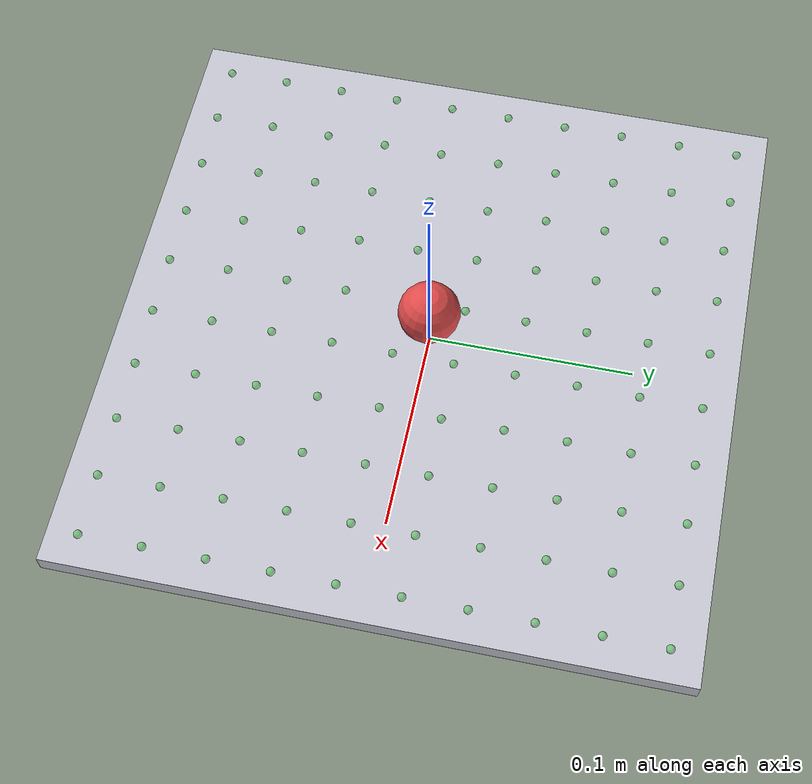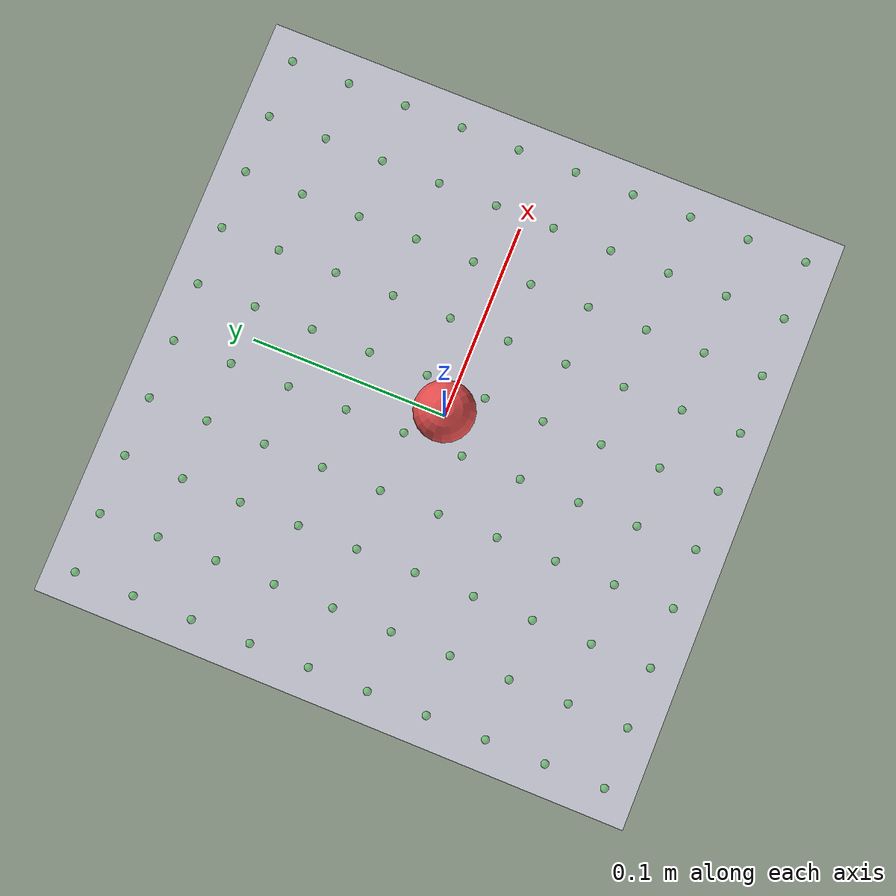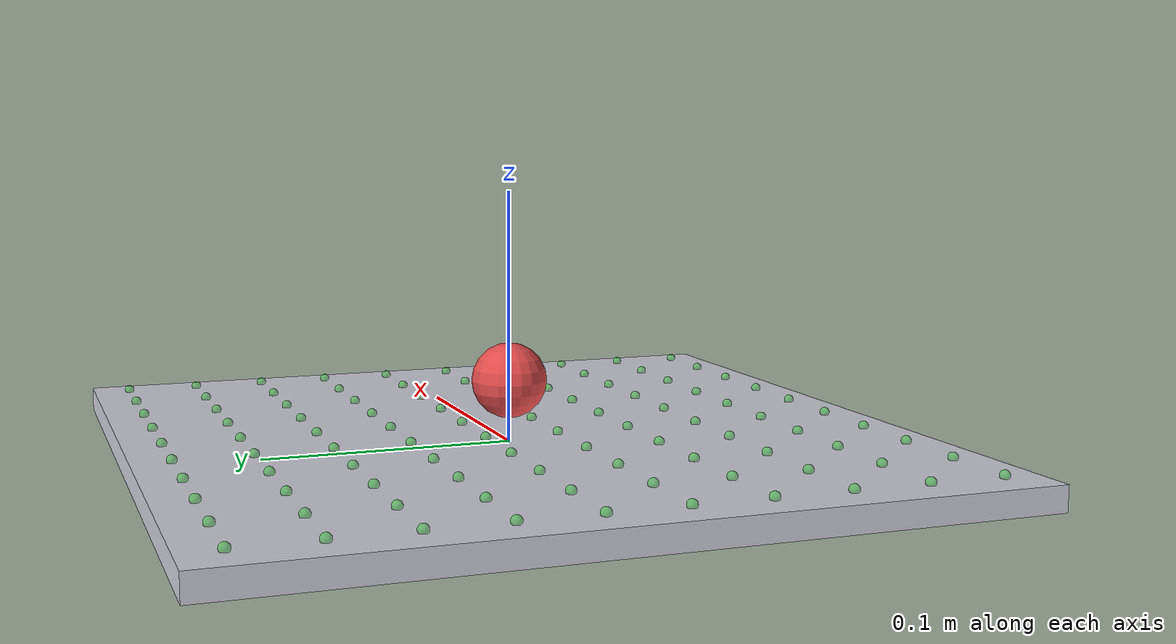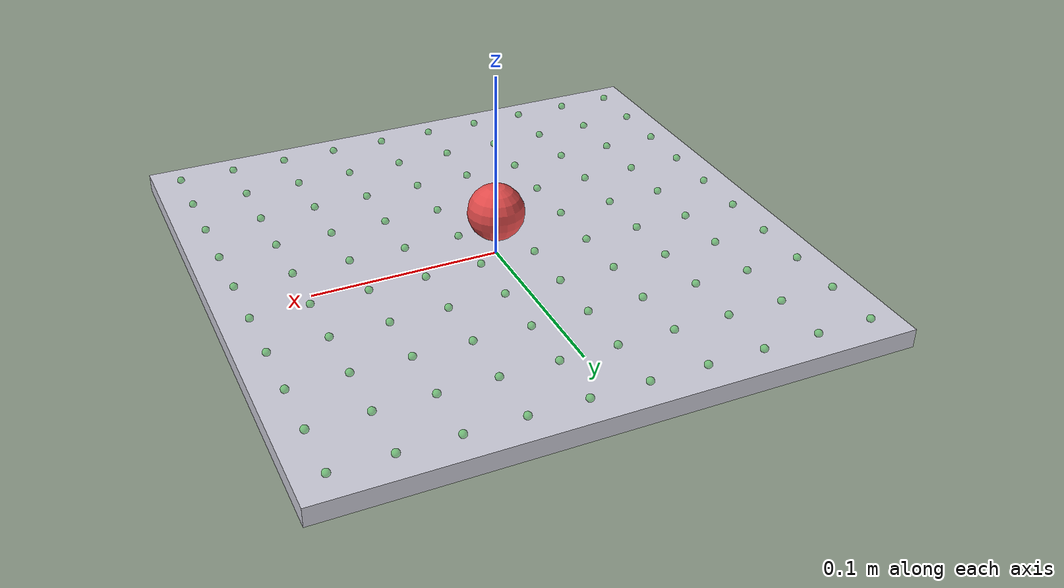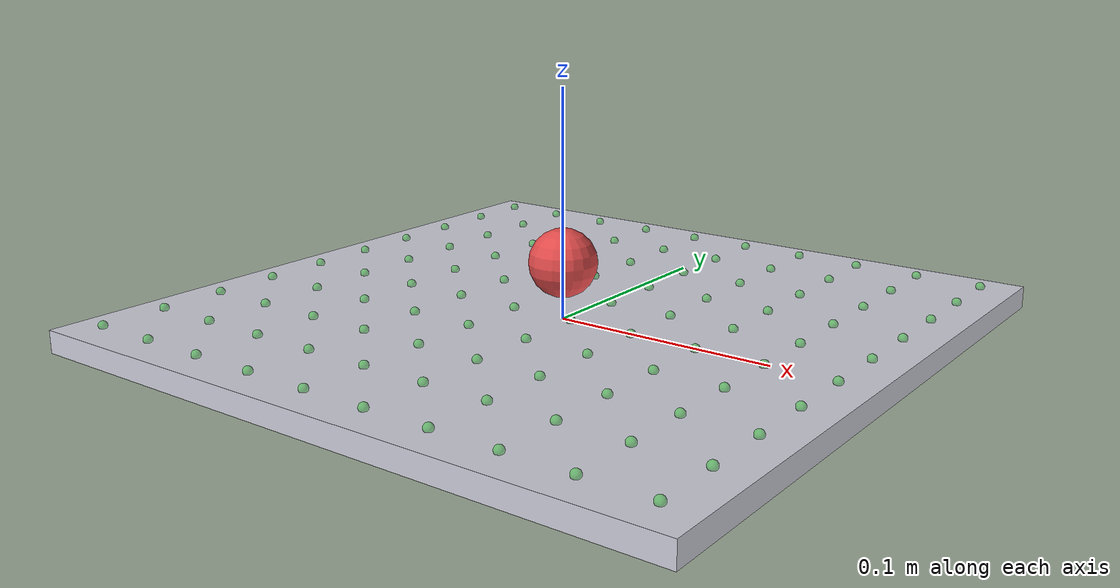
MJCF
<mujoco model="tilt_plate">
  <!-- 단위/파서 설정: 각도 degree, 관성은 geom에서 유도 -->
  <compiler angle="degree" inertiafromgeom="true"/>

  <!-- 시뮬레이션 옵션: 0.1 ms timestep, 표준 중력 -->
  <option timestep="0.0001" gravity="0 0 -9.81" integrator="RK4" />

  <!-- 기본값: 마찰(접선, 비틀림, 굴림), 해상도 등 -->
  <default>
    <geom  condim="6" margin="0.001" solimp="0.9 0.95 0.001" solref="0.002 1"/>
    <!-- 평판(금속) 과 구(고무) 정도의 마찰 차이를 줌 -->
    <default class="plate">
      <!-- 낮은 굴림마찰: 평활하지만 정지로 수렴 -->
      <geom type="box" friction="0.8 0.003 0.001" rgba="0.8 0.8 0.85 1"/>
    </default>
    <default class="ball">
      <!-- 굴림마찰을 약간 더 크게 (공이 너무 오래 굴러가지 않도록) -->
      <geom type="sphere" friction="0.9 0.005 0.002" rgba="0.9 0.3 0.3 1"/>
    </default>
    <joint armature="0.002" damping="0.1" limited="true"/>
    <motor gear="1.0" ctrllimited="true" ctrlrange="-1.0 1.0"/>
  </default>

  <asset>
    <!-- 시각화를 위한 재질/텍스처는 생략 가능 -->
  </asset>

  <worldbody>
    <!-- 기준 좌표 (0,0,0): 평판의 회전 중심 -->
    <!-- 평판 본체: 두께 5 mm, 한 변 0.30 m -->
    <body name="plate_base" pos="0 0 0">
      <!-- 두 축 힌지: x, y 축으로 기울임 (±5 deg는 필요시 조정) -->
      <joint name="hinge_x" type="hinge" axis="1 0 0" range="-5 5"/>
      <joint name="hinge_y" type="hinge" axis="0 1 0" range="-5 5"/>

      <geom name="plate_geom" class="plate" size="0.15 0.15 0.005" mass="1.0"/>

      <!-- 센서(뉴런) 사이트 100개: 30cm×30cm 평면 위 10×10 슬롯
           - 원점(0,0)은 중심. Z는 평판 윗면 약간 위로(0.006) -->
      <!-- 슬롯 간격: 0.03 m (0.3 / 9). 인덱스 i,j ∈ [0..9] -->
      <!-- 이름: sn_i{row}_j{col} -->
      <site name="sn_i0_j0" pos="-0.135 -0.135 0.006" size="0.002" type="sphere" rgba="0.2 0.8 0.2 0.5"/>
      <site name="sn_i0_j1" pos="-0.105 -0.135 0.006" size="0.002" type="sphere" rgba="0.2 0.8 0.2 0.5"/>
      <site name="sn_i0_j2" pos="-0.075 -0.135 0.006" size="0.002" type="sphere" rgba="0.2 0.8 0.2 0.5"/>
      <site name="sn_i0_j3" pos="-0.045 -0.135 0.006" size="0.002" type="sphere" rgba="0.2 0.8 0.2 0.5"/>
      <site name="sn_i0_j4" pos="-0.015 -0.135 0.006" size="0.002" type="sphere" rgba="0.2 0.8 0.2 0.5"/>
      <site name="sn_i0_j5" pos=" 0.015 -0.135 0.006" size="0.002" type="sphere" rgba="0.2 0.8 0.2 0.5"/>
      <site name="sn_i0_j6" pos=" 0.045 -0.135 0.006" size="0.002" type="sphere" rgba="0.2 0.8 0.2 0.5"/>
      <site name="sn_i0_j7" pos=" 0.075 -0.135 0.006" size="0.002" type="sphere" rgba="0.2 0.8 0.2 0.5"/>
      <site name="sn_i0_j8" pos=" 0.105 -0.135 0.006" size="0.002" type="sphere" rgba="0.2 0.8 0.2 0.5"/>
      <site name="sn_i0_j9" pos=" 0.135 -0.135 0.006" size="0.002" type="sphere" rgba="0.2 0.8 0.2 0.5"/>
      <site name="sn_i1_j0" pos="-0.135 -0.105 0.006" size="0.002" type="sphere" rgba="0.2 0.8 0.2 0.5"/>
      <site name="sn_i1_j1" pos="-0.105 -0.105 0.006" size="0.002" type="sphere" rgba="0.2 0.8 0.2 0.5"/>
      <site name="sn_i1_j2" pos="-0.075 -0.105 0.006" size="0.002" type="sphere" rgba="0.2 0.8 0.2 0.5"/>
      <site name="sn_i1_j3" pos="-0.045 -0.105 0.006" size="0.002" type="sphere" rgba="0.2 0.8 0.2 0.5"/>
      <site name="sn_i1_j4" pos="-0.015 -0.105 0.006" size="0.002" type="sphere" rgba="0.2 0.8 0.2 0.5"/>
      <site name="sn_i1_j5" pos=" 0.015 -0.105 0.006" size="0.002" type="sphere" rgba="0.2 0.8 0.2 0.5"/>
      <site name="sn_i1_j6" pos=" 0.045 -0.105 0.006" size="0.002" type="sphere" rgba="0.2 0.8 0.2 0.5"/>
      <site name="sn_i1_j7" pos=" 0.075 -0.105 0.006" size="0.002" type="sphere" rgba="0.2 0.8 0.2 0.5"/>
      <site name="sn_i1_j8" pos=" 0.105 -0.105 0.006" size="0.002" type="sphere" rgba="0.2 0.8 0.2 0.5"/>
      <site name="sn_i1_j9" pos=" 0.135 -0.105 0.006" size="0.002" type="sphere" rgba="0.2 0.8 0.2 0.5"/>
      <site name="sn_i2_j0" pos="-0.135 -0.075 0.006" size="0.002" type="sphere" rgba="0.2 0.8 0.2 0.5"/>
      <site name="sn_i2_j1" pos="-0.105 -0.075 0.006" size="0.002" type="sphere" rgba="0.2 0.8 0.2 0.5"/>
      <site name="sn_i2_j2" pos="-0.075 -0.075 0.006" size="0.002" type="sphere" rgba="0.2 0.8 0.2 0.5"/>
      <site name="sn_i2_j3" pos="-0.045 -0.075 0.006" size="0.002" type="sphere" rgba="0.2 0.8 0.2 0.5"/>
      <site name="sn_i2_j4" pos="-0.015 -0.075 0.006" size="0.002" type="sphere" rgba="0.2 0.8 0.2 0.5"/>
      <site name="sn_i2_j5" pos=" 0.015 -0.075 0.006" size="0.002" type="sphere" rgba="0.2 0.8 0.2 0.5"/>
      <site name="sn_i2_j6" pos=" 0.045 -0.075 0.006" size="0.002" type="sphere" rgba="0.2 0.8 0.2 0.5"/>
      <site name="sn_i2_j7" pos=" 0.075 -0.075 0.006" size="0.002" type="sphere" rgba="0.2 0.8 0.2 0.5"/>
      <site name="sn_i2_j8" pos=" 0.105 -0.075 0.006" size="0.002" type="sphere" rgba="0.2 0.8 0.2 0.5"/>
      <site name="sn_i2_j9" pos=" 0.135 -0.075 0.006" size="0.002" type="sphere" rgba="0.2 0.8 0.2 0.5"/>
      <site name="sn_i3_j0" pos="-0.135 -0.045 0.006" size="0.002" type="sphere" rgba="0.2 0.8 0.2 0.5"/>
      <site name="sn_i3_j1" pos="-0.105 -0.045 0.006" size="0.002" type="sphere" rgba="0.2 0.8 0.2 0.5"/>
      <site name="sn_i3_j2" pos="-0.075 -0.045 0.006" size="0.002" type="sphere" rgba="0.2 0.8 0.2 0.5"/>
      <site name="sn_i3_j3" pos="-0.045 -0.045 0.006" size="0.002" type="sphere" rgba="0.2 0.8 0.2 0.5"/>
      <site name="sn_i3_j4" pos="-0.015 -0.045 0.006" size="0.002" type="sphere" rgba="0.2 0.8 0.2 0.5"/>
      <site name="sn_i3_j5" pos=" 0.015 -0.045 0.006" size="0.002" type="sphere" rgba="0.2 0.8 0.2 0.5"/>
      <site name="sn_i3_j6" pos=" 0.045 -0.045 0.006" size="0.002" type="sphere" rgba="0.2 0.8 0.2 0.5"/>
      <site name="sn_i3_j7" pos=" 0.075 -0.045 0.006" size="0.002" type="sphere" rgba="0.2 0.8 0.2 0.5"/>
      <site name="sn_i3_j8" pos=" 0.105 -0.045 0.006" size="0.002" type="sphere" rgba="0.2 0.8 0.2 0.5"/>
      <site name="sn_i3_j9" pos=" 0.135 -0.045 0.006" size="0.002" type="sphere" rgba="0.2 0.8 0.2 0.5"/>
      <site name="sn_i4_j0" pos="-0.135 -0.015 0.006" size="0.002" type="sphere" rgba="0.2 0.8 0.2 0.5"/>
      <site name="sn_i4_j1" pos="-0.105 -0.015 0.006" size="0.002" type="sphere" rgba="0.2 0.8 0.2 0.5"/>
      <site name="sn_i4_j2" pos="-0.075 -0.015 0.006" size="0.002" type="sphere" rgba="0.2 0.8 0.2 0.5"/>
      <site name="sn_i4_j3" pos="-0.045 -0.015 0.006" size="0.002" type="sphere" rgba="0.2 0.8 0.2 0.5"/>
      <site name="sn_i4_j4" pos="-0.015 -0.015 0.006" size="0.002" type="sphere" rgba="0.2 0.8 0.2 0.5"/>
      <site name="sn_i4_j5" pos=" 0.015 -0.015 0.006" size="0.002" type="sphere" rgba="0.2 0.8 0.2 0.5"/>
      <site name="sn_i4_j6" pos=" 0.045 -0.015 0.006" size="0.002" type="sphere" rgba="0.2 0.8 0.2 0.5"/>
      <site name="sn_i4_j7" pos=" 0.075 -0.015 0.006" size="0.002" type="sphere" rgba="0.2 0.8 0.2 0.5"/>
      <site name="sn_i4_j8" pos=" 0.105 -0.015 0.006" size="0.002" type="sphere" rgba="0.2 0.8 0.2 0.5"/>
      <site name="sn_i4_j9" pos=" 0.135 -0.015 0.006" size="0.002" type="sphere" rgba="0.2 0.8 0.2 0.5"/>
      <site name="sn_i5_j0" pos="-0.135 0.015 0.006" size="0.002" type="sphere" rgba="0.2 0.8 0.2 0.5"/>
      <site name="sn_i5_j1" pos="-0.105 0.015 0.006" size="0.002" type="sphere" rgba="0.2 0.8 0.2 0.5"/>
      <site name="sn_i5_j2" pos="-0.075 0.015 0.006" size="0.002" type="sphere" rgba="0.2 0.8 0.2 0.5"/>
      <site name="sn_i5_j3" pos="-0.045 0.015 0.006" size="0.002" type="sphere" rgba="0.2 0.8 0.2 0.5"/>
      <site name="sn_i5_j4" pos="-0.015 0.015 0.006" size="0.002" type="sphere" rgba="0.2 0.8 0.2 0.5"/>
      <site name="sn_i5_j5" pos=" 0.015 0.015 0.006" size="0.002" type="sphere" rgba="0.2 0.8 0.2 0.5"/>
      <site name="sn_i5_j6" pos=" 0.045 0.015 0.006" size="0.002" type="sphere" rgba="0.2 0.8 0.2 0.5"/>
      <site name="sn_i5_j7" pos=" 0.075 0.015 0.006" size="0.002" type="sphere" rgba="0.2 0.8 0.2 0.5"/>
      <site name="sn_i5_j8" pos=" 0.105 0.015 0.006" size="0.002" type="sphere" rgba="0.2 0.8 0.2 0.5"/>
      <site name="sn_i5_j9" pos=" 0.135 0.015 0.006" size="0.002" type="sphere" rgba="0.2 0.8 0.2 0.5"/>
      <site name="sn_i6_j0" pos="-0.135 0.045 0.006" size="0.002" type="sphere" rgba="0.2 0.8 0.2 0.5"/>
      <site name="sn_i6_j1" pos="-0.105 0.045 0.006" size="0.002" type="sphere" rgba="0.2 0.8 0.2 0.5"/>
      <site name="sn_i6_j2" pos="-0.075 0.045 0.006" size="0.002" type="sphere" rgba="0.2 0.8 0.2 0.5"/>
      <site name="sn_i6_j3" pos="-0.045 0.045 0.006" size="0.002" type="sphere" rgba="0.2 0.8 0.2 0.5"/>
      <site name="sn_i6_j4" pos="-0.015 0.045 0.006" size="0.002" type="sphere" rgba="0.2 0.8 0.2 0.5"/>
      <site name="sn_i6_j5" pos=" 0.015 0.045 0.006" size="0.002" type="sphere" rgba="0.2 0.8 0.2 0.5"/>
      <site name="sn_i6_j6" pos=" 0.045 0.045 0.006" size="0.002" type="sphere" rgba="0.2 0.8 0.2 0.5"/>
      <site name="sn_i6_j7" pos=" 0.075 0.045 0.006" size="0.002" type="sphere" rgba="0.2 0.8 0.2 0.5"/>
      <site name="sn_i6_j8" pos=" 0.105 0.045 0.006" size="0.002" type="sphere" rgba="0.2 0.8 0.2 0.5"/>
      <site name="sn_i6_j9" pos=" 0.135 0.045 0.006" size="0.002" type="sphere" rgba="0.2 0.8 0.2 0.5"/>
      <site name="sn_i7_j0" pos="-0.135 0.075 0.006" size="0.002" type="sphere" rgba="0.2 0.8 0.2 0.5"/>
      <site name="sn_i7_j1" pos="-0.105 0.075 0.006" size="0.002" type="sphere" rgba="0.2 0.8 0.2 0.5"/>
      <site name="sn_i7_j2" pos="-0.075 0.075 0.006" size="0.002" type="sphere" rgba="0.2 0.8 0.2 0.5"/>
      <site name="sn_i7_j3" pos="-0.045 0.075 0.006" size="0.002" type="sphere" rgba="0.2 0.8 0.2 0.5"/>
      <site name="sn_i7_j4" pos="-0.015 0.075 0.006" size="0.002" type="sphere" rgba="0.2 0.8 0.2 0.5"/>
      <site name="sn_i7_j5" pos=" 0.015 0.075 0.006" size="0.002" type="sphere" rgba="0.2 0.8 0.2 0.5"/>
      <site name="sn_i7_j6" pos=" 0.045 0.075 0.006" size="0.002" type="sphere" rgba="0.2 0.8 0.2 0.5"/>
      <site name="sn_i7_j7" pos=" 0.075 0.075 0.006" size="0.002" type="sphere" rgba="0.2 0.8 0.2 0.5"/>
      <site name="sn_i7_j8" pos=" 0.105 0.075 0.006" size="0.002" type="sphere" rgba="0.2 0.8 0.2 0.5"/>
      <site name="sn_i7_j9" pos=" 0.135 0.075 0.006" size="0.002" type="sphere" rgba="0.2 0.8 0.2 0.5"/>
      <site name="sn_i8_j0" pos="-0.135 0.105 0.006" size="0.002" type="sphere" rgba="0.2 0.8 0.2 0.5"/>
      <site name="sn_i8_j1" pos="-0.105 0.105 0.006" size="0.002" type="sphere" rgba="0.2 0.8 0.2 0.5"/>
      <site name="sn_i8_j2" pos="-0.075 0.105 0.006" size="0.002" type="sphere" rgba="0.2 0.8 0.2 0.5"/>
      <site name="sn_i8_j3" pos="-0.045 0.105 0.006" size="0.002" type="sphere" rgba="0.2 0.8 0.2 0.5"/>
      <site name="sn_i8_j4" pos="-0.015 0.105 0.006" size="0.002" type="sphere" rgba="0.2 0.8 0.2 0.5"/>
      <site name="sn_i8_j5" pos=" 0.015 0.105 0.006" size="0.002" type="sphere" rgba="0.2 0.8 0.2 0.5"/>
      <site name="sn_i8_j6" pos=" 0.045 0.105 0.006" size="0.002" type="sphere" rgba="0.2 0.8 0.2 0.5"/>
      <site name="sn_i8_j7" pos=" 0.075 0.105 0.006" size="0.002" type="sphere" rgba="0.2 0.8 0.2 0.5"/>
      <site name="sn_i8_j8" pos=" 0.105 0.105 0.006" size="0.002" type="sphere" rgba="0.2 0.8 0.2 0.5"/>
      <site name="sn_i8_j9" pos=" 0.135 0.105 0.006" size="0.002" type="sphere" rgba="0.2 0.8 0.2 0.5"/>
      <site name="sn_i9_j0" pos="-0.135 0.135 0.006" size="0.002" type="sphere" rgba="0.2 0.8 0.2 0.5"/>
      <site name="sn_i9_j1" pos="-0.105 0.135 0.006" size="0.002" type="sphere" rgba="0.2 0.8 0.2 0.5"/>
      <site name="sn_i9_j2" pos="-0.075 0.135 0.006" size="0.002" type="sphere" rgba="0.2 0.8 0.2 0.5"/>
      <site name="sn_i9_j3" pos="-0.045 0.135 0.006" size="0.002" type="sphere" rgba="0.2 0.8 0.2 0.5"/>
      <site name="sn_i9_j4" pos="-0.015 0.135 0.006" size="0.002" type="sphere" rgba="0.2 0.8 0.2 0.5"/>
      <site name="sn_i9_j5" pos=" 0.015 0.135 0.006" size="0.002" type="sphere" rgba="0.2 0.8 0.2 0.5"/>
      <site name="sn_i9_j6" pos=" 0.045 0.135 0.006" size="0.002" type="sphere" rgba="0.2 0.8 0.2 0.5"/>
      <site name="sn_i9_j7" pos=" 0.075 0.135 0.006" size="0.002" type="sphere" rgba="0.2 0.8 0.2 0.5"/>
      <site name="sn_i9_j8" pos=" 0.105 0.135 0.006" size="0.002" type="sphere" rgba="0.2 0.8 0.2 0.5"/>
      <site name="sn_i9_j9" pos=" 0.135 0.135 0.006" size="0.002" type="sphere" rgba="0.2 0.8 0.2 0.5"/>
      <!-- ... 나머지 90개는 파이썬으로 생성 권장 -->
    </body>

    <!-- 공(body): 자유낙하 + 평판 접촉.
         반지름과 질량은 파라미터화(예: r=0.015 m, m=0.03 kg) -->
    <body name="ball" pos="0 0 0.025">
      <freejoint name="ball_free"/>
      <geom name="ball_geom" class="ball" size="0.015" mass="0.03"/>
    </body>
  </worldbody>

  <!-- 2축 힌지에 모터(토크 입력). 4엣지 입력→환경에서 매핑해 토크로 주입 -->
  <actuator>
    <motor name="mx" joint="hinge_x" gear="1"/>
    <motor name="my" joint="hinge_y" gear="1"/>
  </actuator>
</mujoco>
